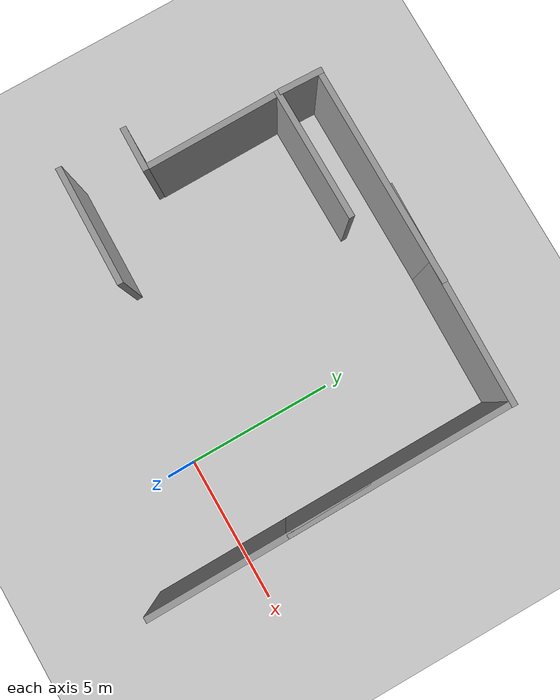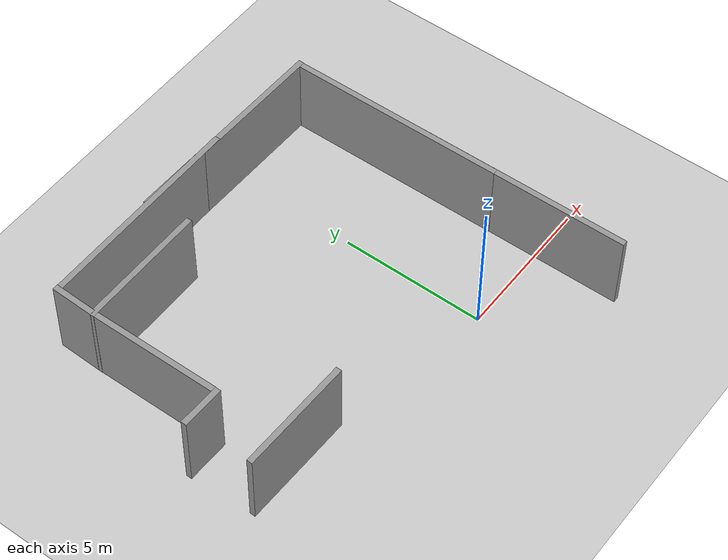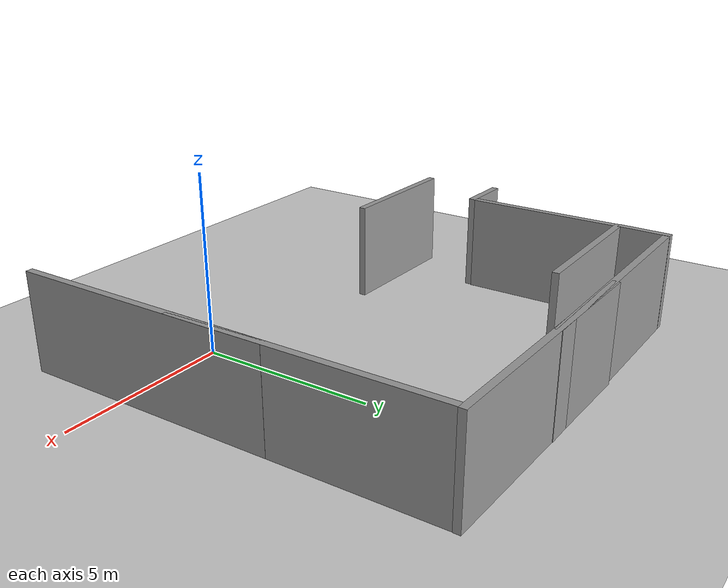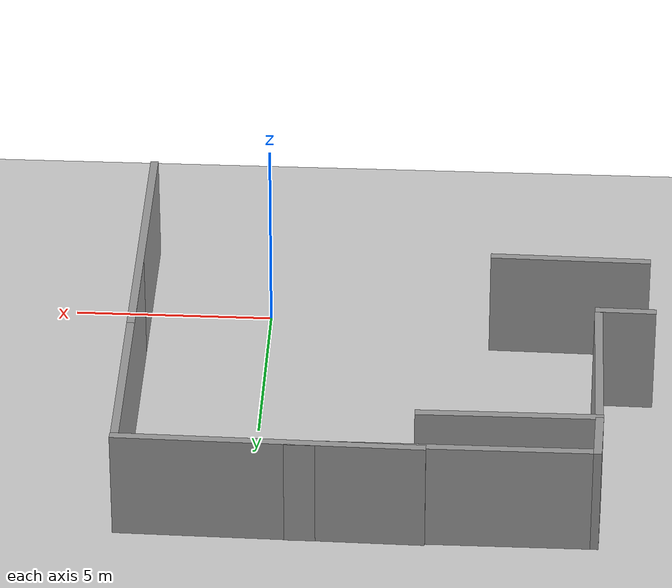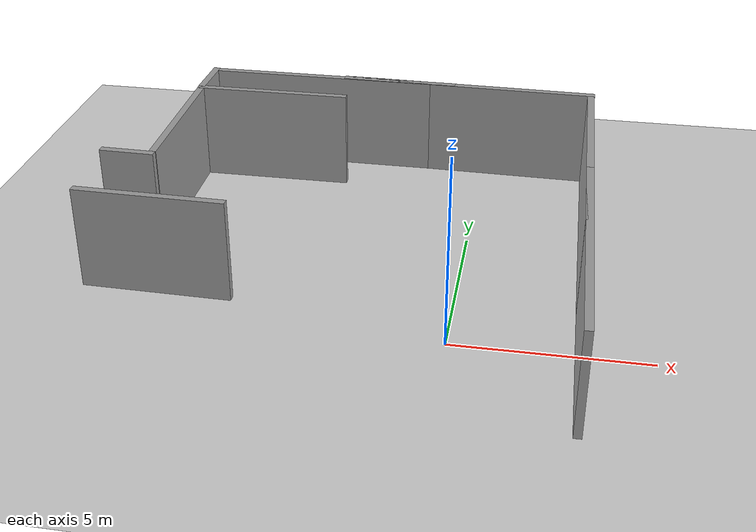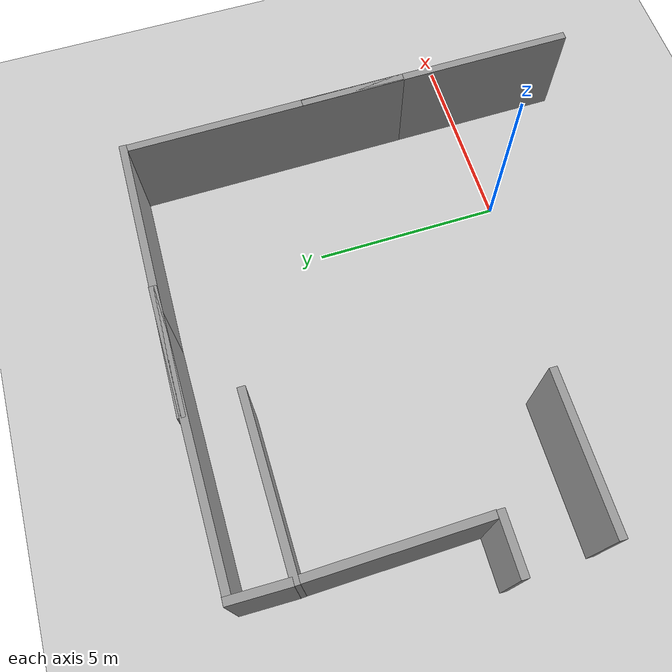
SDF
<sdf version="1.7">
 <world name="default">
  <model name="ground_plane">
   <static>1</static>
   <link name="link">
    <collision name="collision">
     <geometry><plane><normal>0 0 1</normal><size>100 100</size></plane></geometry>
     <surface>
      <contact><collide_bitmask>65535</collide_bitmask></contact>
      <friction><ode><mu>100</mu><mu2>50</mu2></ode></friction>
     </surface>
    </collision>
    <visual name="visual">
     <cast_shadows>0</cast_shadows>
     <geometry><plane><normal>0 0 1</normal><size>100 100</size></plane></geometry>
     <material>
      <script><uri>file://media/materials/scripts/gazebo.material</uri><name>Gazebo/Grey</name></script>
     </material>
    </visual>
   </link>
  </model>
  <model name="grey_wall">
   <static>1</static>
   <link name="link">
    <pose>0 0 1.4 0 -0 0</pose>
    <collision name="collision"><geometry><box><size>7.5 0.2 2.8</size></box></geometry></collision>
    <visual name="visual">
     <cast_shadows>0</cast_shadows>
     <geometry><box><size>7.5 0.2 2.8</size></box></geometry>
     <material>
      <script>
       <uri>https://fuel.ignitionrobotics.org/1.0/OpenRobotics/models/Grey Wall/2/files/materials/scripts</uri>
       <uri>https://fuel.ignitionrobotics.org/1.0/OpenRobotics/models/Grey Wall/2/files/materials/textures</uri>
       <name>vrc/grey_wall</name>
      </script>
     </material>
    </visual>
   </link>
   <pose>-4.6505 9.39716 0 0 -0 0</pose>
  </model>
  <model name="grey_wall_clone_0">
   <static>1</static>
   <link name="link">
    <pose>0 0 1.4 0 -0 0</pose>
    <collision name="collision"><geometry><box><size>7.5 0.2 2.8</size></box></geometry></collision>
    <visual name="visual">
     <cast_shadows>0</cast_shadows>
     <geometry><box><size>7.5 0.2 2.8</size></box></geometry>
     <material>
      <script>
       <uri>https://fuel.ignitionrobotics.org/1.0/OpenRobotics/models/Grey Wall/2/files/materials/scripts</uri>
       <uri>https://fuel.ignitionrobotics.org/1.0/OpenRobotics/models/Grey Wall/2/files/materials/textures</uri>
       <name>vrc/grey_wall</name>
      </script>
     </material>
    </visual>
   </link>
   <pose>-0.519816 9.37581 0 0 0 -0.018951</pose>
  </model>
  <model name="grey_wall_clone_clone">
   <static>1</static>
   <link name="link">
    <pose>0 0 1.4 0 -0 0</pose>
    <collision name="collision"><geometry><box><size>7.5 0.2 2.8</size></box></geometry></collision>
    <visual name="visual">
     <cast_shadows>0</cast_shadows>
     <geometry><box><size>7.5 0.2 2.8</size></box></geometry>
     <material>
      <script>
       <uri>https://fuel.ignitionrobotics.org/1.0/OpenRobotics/models/Grey Wall/2/files/materials/scripts</uri>
       <uri>https://fuel.ignitionrobotics.org/1.0/OpenRobotics/models/Grey Wall/2/files/materials/textures</uri>
       <name>vrc/grey_wall</name>
      </script>
     </material>
    </visual>
   </link>
   <pose>3.14385 5.46325 0 0 -0 1.57761</pose>
  </model>
  <model name="grey_wall_clone_clone_clone">
   <link name="link">
    <pose>1.68136 0.067415 1.4 0 -0 0</pose>
    <inertial>
     <mass>1</mass>
     <inertia><ixx>1</ixx><ixy>0</ixy><ixz>0</ixz><iyy>1</iyy><iyz>0</iyz><izz>1</izz></inertia>
    </inertial>
    <visual name="visual">
     <cast_shadows>0</cast_shadows>
     <geometry><box><size>4.5 0.2 2.8</size></box></geometry>
     <material>
      <script>
       <uri>https://fuel.ignitionrobotics.org/1.0/OpenRobotics/models/Grey Wall/2/files/materials/scripts</uri>
       <uri>https://fuel.ignitionrobotics.org/1.0/OpenRobotics/models/Grey Wall/2/files/materials/textures</uri>
       <name>vrc/grey_wall</name>
      </script>
      <shader type="pixel"><normal_map>__default__</normal_map></shader>
      <ambient>1 1 1 1</ambient>
      <diffuse>1 1 1 1</diffuse>
      <specular>0 0 0 1</specular>
      <emissive>0 0 0 1</emissive>
     </material>
    </visual>
    <collision name="collision">
     <geometry><box><size>7.5 0.2 2.8</size></box></geometry>
     <surface>
      <friction>
       <ode><mu>1</mu><mu2>1</mu2><fdir1>0 0 0</fdir1><slip1>0</slip1><slip2>0</slip2></ode>
       <torsional>
        <coefficient>1</coefficient>
        <patch_radius>0</patch_radius>
        <surface_radius>0</surface_radius>
        <use_patch_radius>1</use_patch_radius>
        <ode><slip>0</slip></ode>
       </torsional>
      </friction>
      <bounce><restitution_coefficient>0</restitution_coefficient><threshold>1e+06</threshold></bounce>
      <contact>
       <collide_without_contact>0</collide_without_contact>
       <collide_without_contact_bitmask>1</collide_without_contact_bitmask>
       <collide_bitmask>1</collide_bitmask>
       <ode>
        <soft_cfm>0</soft_cfm>
        <soft_erp>0.2</soft_erp>
        <kp>1e+13</kp>
        <kd>1</kd>
        <max_vel>0.01</max_vel>
        <min_depth>0</min_depth>
       </ode>
       <bullet>
        <split_impulse>1</split_impulse>
        <split_impulse_penetration_threshold>-0.01</split_impulse_penetration_threshold>
        <soft_cfm>0</soft_cfm>
        <soft_erp>0.2</soft_erp>
        <kp>1e+13</kp>
        <kd>1</kd>
       </bullet>
      </contact>
     </surface>
    </collision>
   </link>
   <static>1</static>
   <pose>-8.25319 4.05155 0 0 -0 1.57761</pose>
  </model>
  <model name="grey_wall_clone_0_clone_clone_clone">
   <link name="link">
    <pose>0 0 1.4 0 -0 0</pose>
    <inertial>
     <mass>1</mass>
     <inertia><ixx>1</ixx><ixy>0</ixy><ixz>0</ixz><iyy>1</iyy><iyz>0</iyz><izz>1</izz></inertia>
    </inertial>
    <visual name="visual">
     <cast_shadows>0</cast_shadows>
     <geometry><box><size>1.5 0.2 2.8</size></box></geometry>
     <material>
      <script>
       <uri>https://fuel.ignitionrobotics.org/1.0/OpenRobotics/models/Grey Wall/2/files/materials/scripts</uri>
       <uri>https://fuel.ignitionrobotics.org/1.0/OpenRobotics/models/Grey Wall/2/files/materials/textures</uri>
       <name>vrc/grey_wall</name>
      </script>
      <shader type="pixel"><normal_map>__default__</normal_map></shader>
      <ambient>1 1 1 1</ambient>
      <diffuse>1 1 1 1</diffuse>
      <specular>0 0 0 1</specular>
      <emissive>0 0 0 1</emissive>
     </material>
    </visual>
    <collision name="collision">
     <geometry><box><size>7.5 0.2 2.8</size></box></geometry>
     <surface>
      <friction>
       <ode><mu>1</mu><mu2>1</mu2><fdir1>0 0 0</fdir1><slip1>0</slip1><slip2>0</slip2></ode>
       <torsional>
        <coefficient>1</coefficient>
        <patch_radius>0</patch_radius>
        <surface_radius>0</surface_radius>
        <use_patch_radius>1</use_patch_radius>
        <ode><slip>0</slip></ode>
       </torsional>
      </friction>
      <bounce><restitution_coefficient>0</restitution_coefficient><threshold>1e+06</threshold></bounce>
      <contact>
       <collide_without_contact>0</collide_without_contact>
       <collide_without_contact_bitmask>1</collide_without_contact_bitmask>
       <collide_bitmask>1</collide_bitmask>
       <ode>
        <soft_cfm>0</soft_cfm>
        <soft_erp>0.2</soft_erp>
        <kp>1e+13</kp>
        <kd>1</kd>
        <max_vel>0.01</max_vel>
        <min_depth>0</min_depth>
       </ode>
       <bullet>
        <split_impulse>1</split_impulse>
        <split_impulse_penetration_threshold>-0.01</split_impulse_penetration_threshold>
        <soft_cfm>0</soft_cfm>
        <soft_erp>0.2</soft_erp>
        <kp>1e+13</kp>
        <kd>1</kd>
       </bullet>
      </contact>
     </surface>
    </collision>
   </link>
   <static>1</static>
   <pose>-8.98124 3.39991 0.00615 0 0 -0.018951</pose>
  </model>
  <model name="grey_wall_clone_0_clone_clon23re">
   <link name="link">
    <pose>0 0 1.4 0 -0 0</pose>
    <inertial>
     <mass>1</mass>
     <inertia><ixx>1</ixx><ixy>0</ixy><ixz>0</ixz><iyy>1</iyy><iyz>0</iyz><izz>1</izz></inertia>
    </inertial>
    <visual name="visual">
     <cast_shadows>0</cast_shadows>
     <geometry><box><size>4 0.2 2.8</size></box></geometry>
     <material>
      <script>
       <uri>https://fuel.ignitionrobotics.org/1.0/OpenRobotics/models/Grey Wall/2/files/materials/scripts</uri>
       <uri>https://fuel.ignitionrobotics.org/1.0/OpenRobotics/models/Grey Wall/2/files/materials/textures</uri>
       <name>vrc/grey_wall</name>
      </script>
      <shader type="pixel"><normal_map>__default__</normal_map></shader>
      <ambient>1 1 1 1</ambient>
      <diffuse>1 1 1 1</diffuse>
      <specular>0 0 0 1</specular>
      <emissive>0 0 0 1</emissive>
     </material>
    </visual>
    <collision name="collision">
     <geometry><box><size>7.5 0.2 2.8</size></box></geometry>
     <surface>
      <friction>
       <ode><mu>1</mu><mu2>1</mu2><fdir1>0 0 0</fdir1><slip1>0</slip1><slip2>0</slip2></ode>
       <torsional>
        <coefficient>1</coefficient>
        <patch_radius>0</patch_radius>
        <surface_radius>0</surface_radius>
        <use_patch_radius>1</use_patch_radius>
        <ode><slip>0</slip></ode>
       </torsional>
      </friction>
      <bounce><restitution_coefficient>0</restitution_coefficient><threshold>1e+06</threshold></bounce>
      <contact>
       <collide_without_contact>0</collide_without_contact>
       <collide_without_contact_bitmask>1</collide_without_contact_bitmask>
       <collide_bitmask>1</collide_bitmask>
       <ode>
        <soft_cfm>0</soft_cfm>
        <soft_erp>0.2</soft_erp>
        <kp>1e+13</kp>
        <kd>1</kd>
        <max_vel>0.01</max_vel>
        <min_depth>0</min_depth>
       </ode>
       <bullet>
        <split_impulse>1</split_impulse>
        <split_impulse_penetration_threshold>-0.01</split_impulse_penetration_threshold>
        <soft_cfm>0</soft_cfm>
        <soft_erp>0.2</soft_erp>
        <kp>1e+13</kp>
        <kd>1</kd>
       </bullet>
      </contact>
     </surface>
    </collision>
   </link>
   <static>1</static>
   <pose>-7.60849 1.1132 0.0048 0 0 -0.018951</pose>
  </model>
  <model name="grey_wall_clone_clone_clone_clone">
   <link name="link">
    <pose>1.68136 0.067415 1.4 0 -0 0</pose>
    <inertial>
     <mass>1</mass>
     <inertia><ixx>1</ixx><ixy>0</ixy><ixz>0</ixz><iyy>1</iyy><iyz>0</iyz><izz>1</izz></inertia>
    </inertial>
    <visual name="visual">
     <cast_shadows>0</cast_shadows>
     <geometry><box><size>4.5 0.2 2.8</size></box></geometry>
     <material>
      <script>
       <uri>https://fuel.ignitionrobotics.org/1.0/OpenRobotics/models/Grey Wall/2/files/materials/scripts</uri>
       <uri>https://fuel.ignitionrobotics.org/1.0/OpenRobotics/models/Grey Wall/2/files/materials/textures</uri>
       <name>vrc/grey_wall</name>
      </script>
      <shader type="pixel"><normal_map>__default__</normal_map></shader>
      <ambient>1 1 1 1</ambient>
      <diffuse>1 1 1 1</diffuse>
      <specular>0 0 0 1</specular>
      <emissive>0 0 0 1</emissive>
     </material>
    </visual>
    <collision name="collision">
     <geometry><box><size>7.5 0.2 2.8</size></box></geometry>
     <surface>
      <friction>
       <ode><mu>1</mu><mu2>1</mu2><fdir1>0 0 0</fdir1><slip1>0</slip1><slip2>0</slip2></ode>
       <torsional>
        <coefficient>1</coefficient>
        <patch_radius>0</patch_radius>
        <surface_radius>0</surface_radius>
        <use_patch_radius>1</use_patch_radius>
        <ode><slip>0</slip></ode>
       </torsional>
      </friction>
      <bounce><restitution_coefficient>0</restitution_coefficient><threshold>1e+06</threshold></bounce>
      <contact>
       <collide_without_contact>0</collide_without_contact>
       <collide_without_contact_bitmask>1</collide_without_contact_bitmask>
       <collide_bitmask>1</collide_bitmask>
       <ode>
        <soft_cfm>0</soft_cfm>
        <soft_erp>0.2</soft_erp>
        <kp>1e+13</kp>
        <kd>1</kd>
        <max_vel>0.01</max_vel>
        <min_depth>0</min_depth>
       </ode>
       <bullet>
        <split_impulse>1</split_impulse>
        <split_impulse_penetration_threshold>-0.01</split_impulse_penetration_threshold>
        <soft_cfm>0</soft_cfm>
        <soft_erp>0.2</soft_erp>
        <kp>1e+13</kp>
        <kd>1</kd>
       </bullet>
      </contact>
     </surface>
    </collision>
   </link>
   <static>1</static>
   <pose>-4.51994 8.04676 0.001681 0.006517 1.8e-05 -3.13755</pose>
  </model>
  <model name="grey_wall_clone_0_clone_clone_clone_clone">
   <link name="link">
    <pose>0 0 1.4 0 -0 0</pose>
    <inertial>
     <mass>1</mass>
     <inertia><ixx>1</ixx><ixy>0</ixy><ixz>0</ixz><iyy>1</iyy><iyz>0</iyz><izz>1</izz></inertia>
    </inertial>
    <visual name="visual">
     <cast_shadows>0</cast_shadows>
     <geometry><box><size>1.5 0.2 2.8</size></box></geometry>
     <material>
      <script>
       <uri>https://fuel.ignitionrobotics.org/1.0/OpenRobotics/models/Grey Wall/2/files/materials/scripts</uri>
       <uri>https://fuel.ignitionrobotics.org/1.0/OpenRobotics/models/Grey Wall/2/files/materials/textures</uri>
       <name>vrc/grey_wall</name>
      </script>
      <shader type="pixel"><normal_map>__default__</normal_map></shader>
      <ambient>1 1 1 1</ambient>
      <diffuse>1 1 1 1</diffuse>
      <specular>0 0 0 1</specular>
      <emissive>0 0 0 1</emissive>
     </material>
    </visual>
    <collision name="collision">
     <geometry><box><size>7.5 0.2 2.8</size></box></geometry>
     <surface>
      <friction>
       <ode><mu>1</mu><mu2>1</mu2><fdir1>0 0 0</fdir1><slip1>0</slip1><slip2>0</slip2></ode>
       <torsional>
        <coefficient>1</coefficient>
        <patch_radius>0</patch_radius>
        <surface_radius>0</surface_radius>
        <use_patch_radius>1</use_patch_radius>
        <ode><slip>0</slip></ode>
       </torsional>
      </friction>
      <bounce><restitution_coefficient>0</restitution_coefficient><threshold>1e+06</threshold></bounce>
      <contact>
       <collide_without_contact>0</collide_without_contact>
       <collide_without_contact_bitmask>1</collide_without_contact_bitmask>
       <collide_bitmask>1</collide_bitmask>
       <ode>
        <soft_cfm>0</soft_cfm>
        <soft_erp>0.2</soft_erp>
        <kp>1e+13</kp>
        <kd>1</kd>
        <max_vel>0.01</max_vel>
        <min_depth>0</min_depth>
       </ode>
       <bullet>
        <split_impulse>1</split_impulse>
        <split_impulse_penetration_threshold>-0.01</split_impulse_penetration_threshold>
        <soft_cfm>0</soft_cfm>
        <soft_erp>0.2</soft_erp>
        <kp>1e+13</kp>
        <kd>1</kd>
       </bullet>
      </contact>
     </surface>
    </collision>
   </link>
   <static>1</static>
   <pose>-8.33275 8.75648 0.00615 0 -0 1.54199</pose>
  </model>
  <model name="grey_wall_clone_clone_clone_0">
   <static>1</static>
   <link name="link">
    <pose>0 0 1.4 0 -0 0</pose>
    <collision name="collision"><geometry><box><size>7.5 0.2 2.8</size></box></geometry></collision>
    <visual name="visual">
     <cast_shadows>0</cast_shadows>
     <geometry><box><size>7.5 0.2 2.8</size></box></geometry>
     <material>
      <script>
       <uri>https://fuel.ignitionrobotics.org/1.0/OpenRobotics/models/Grey Wall/2/files/materials/scripts</uri>
       <uri>https://fuel.ignitionrobotics.org/1.0/OpenRobotics/models/Grey Wall/2/files/materials/textures</uri>
       <name>vrc/grey_wall</name>
      </script>
     </material>
    </visual>
   </link>
   <pose>3.17797 0.782838 0 0 -0 1.57761</pose>
  </model>
 </world>
</sdf>
